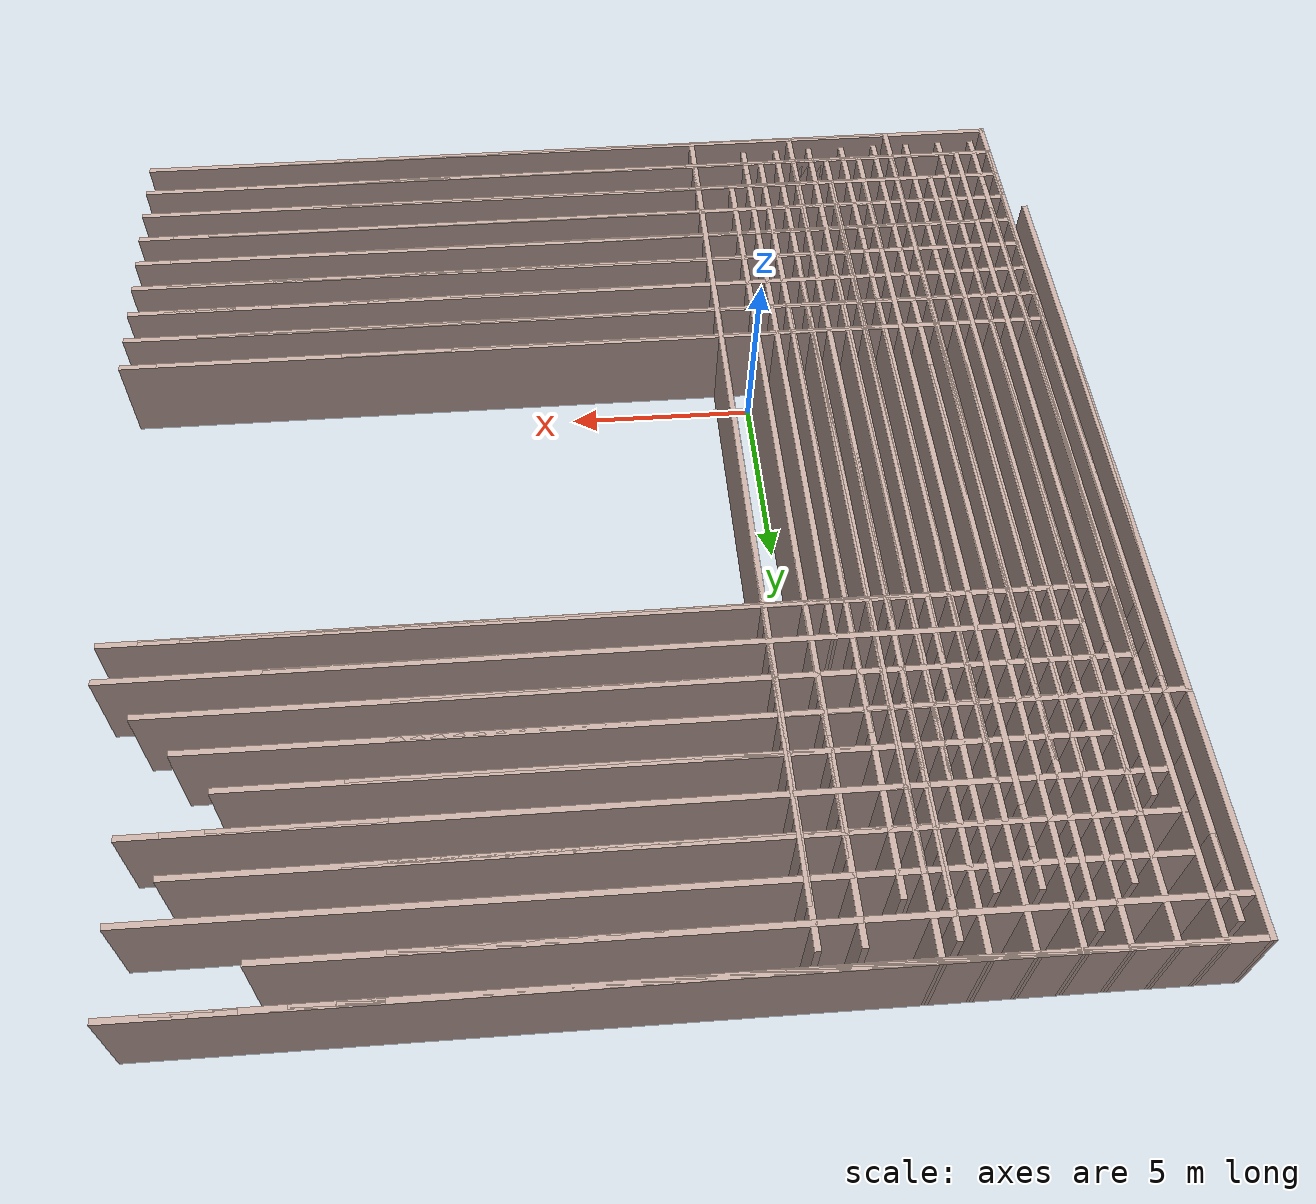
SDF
<?xml version="1.0" ?>
<sdf version="1.7">
    <model name="labyrinth">

			<include><name>0_8h</name><uri>model://wall</uri><pose>0 8 0 0 0 0</pose></include>

			<include><name>0_8v</name><uri>model://wall</uri><pose>0 8 0 0 0 1.5707963267948966</pose></include>

			<include><name>0_9h</name><uri>model://wall</uri><pose>0 9 0 0 0 0</pose></include>

			<include><name>0_7v</name><uri>model://wall</uri><pose>0 7 0 0 0 1.5707963267948966</pose></include>

			<include><name>0_6v</name><uri>model://wall</uri><pose>0 6 0 0 0 1.5707963267948966</pose></include>

			<include><name>0_5v</name><uri>model://wall</uri><pose>0 5 0 0 0 1.5707963267948966</pose></include>

			<include><name>0_4v</name><uri>model://wall</uri><pose>0 4 0 0 0 1.5707963267948966</pose></include>

			<include><name>0_3h</name><uri>model://wall</uri><pose>0 3 0 0 0 0</pose></include>

			<include><name>0_3v</name><uri>model://wall</uri><pose>0 3 0 0 0 1.5707963267948966</pose></include>

			<include><name>0_2v</name><uri>model://wall</uri><pose>0 2 0 0 0 1.5707963267948966</pose></include>

			<include><name>0_1v</name><uri>model://wall</uri><pose>0 1 0 0 0 1.5707963267948966</pose></include>

			<include><name>0_0h</name><uri>model://wall_White</uri><pose>0 0 0 0 0 0</pose></include>

			<include><name>0_0v</name><uri>model://wall</uri><pose>0 0 0 0 0 1.5707963267948966</pose></include>

			<include><name>1_8h</name><uri>model://wall</uri><pose>1 8 0 0 0 0</pose></include>

			<include><name>1_9h</name><uri>model://wall</uri><pose>1 9 0 0 0 0</pose></include>

			<include><name>1_7h</name><uri>model://wall</uri><pose>1 7 0 0 0 0</pose></include>

			<include><name>1_6h</name><uri>model://wall</uri><pose>1 6 0 0 0 0</pose></include>

			<include><name>1_5h</name><uri>model://wall</uri><pose>1 5 0 0 0 0</pose></include>

			<include><name>1_5v</name><uri>model://wall</uri><pose>1 5 0 0 0 1.5707963267948966</pose></include>

			<include><name>1_4v</name><uri>model://wall</uri><pose>1 4 0 0 0 1.5707963267948966</pose></include>

			<include><name>1_3h</name><uri>model://wall</uri><pose>1 3 0 0 0 0</pose></include>

			<include><name>1_2h</name><uri>model://wall</uri><pose>1 2 0 0 0 0</pose></include>

			<include><name>1_1v</name><uri>model://wall</uri><pose>1 1 0 0 0 1.5707963267948966</pose></include>

			<include><name>1_0h</name><uri>model://wall</uri><pose>1 0 0 0 0 0</pose></include>

			<include><name>2_9h</name><uri>model://wall</uri><pose>2 9 0 0 0 0</pose></include>

			<include><name>2_7v</name><uri>model://wall</uri><pose>2 7 0 0 0 1.5707963267948966</pose></include>

			<include><name>2_6h</name><uri>model://wall</uri><pose>2 6 0 0 0 0</pose></include>

			<include><name>2_4h</name><uri>model://wall</uri><pose>2 4 0 0 0 0</pose></include>

			<include><name>2_3v</name><uri>model://wall</uri><pose>2 3 0 0 0 1.5707963267948966</pose></include>

			<include><name>2_2v</name><uri>model://wall</uri><pose>2 2 0 0 0 1.5707963267948966</pose></include>

			<include><name>2_1h</name><uri>model://wall</uri><pose>2 1 0 0 0 0</pose></include>

			<include><name>2_0h</name><uri>model://wall</uri><pose>2 0 0 0 0 0</pose></include>

			<include><name>3_8v</name><uri>model://wall</uri><pose>3 8 0 0 0 1.5707963267948966</pose></include>

			<include><name>3_9h</name><uri>model://wall</uri><pose>3 9 0 0 0 0</pose></include>

			<include><name>3_7v</name><uri>model://wall</uri><pose>3 7 0 0 0 1.5707963267948966</pose></include>

			<include><name>3_6v</name><uri>model://wall</uri><pose>3 6 0 0 0 1.5707963267948966</pose></include>

			<include><name>3_5h</name><uri>model://wall</uri><pose>3 5 0 0 0 0</pose></include>

			<include><name>3_4v</name><uri>model://wall</uri><pose>3 4 0 0 0 1.5707963267948966</pose></include>

			<include><name>3_2v</name><uri>model://wall</uri><pose>3 2 0 0 0 1.5707963267948966</pose></include>

			<include><name>3_1v</name><uri>model://wall</uri><pose>3 1 0 0 0 1.5707963267948966</pose></include>

			<include><name>3_0h</name><uri>model://wall</uri><pose>3 0 0 0 0 0</pose></include>

			<include><name>3_0v</name><uri>model://wall</uri><pose>3 0 0 0 0 1.5707963267948966</pose></include>

			<include><name>4_8h</name><uri>model://wall</uri><pose>4 8 0 0 0 0</pose></include>

			<include><name>4_9h</name><uri>model://wall</uri><pose>4 9 0 0 0 0</pose></include>

			<include><name>4_7v</name><uri>model://wall</uri><pose>4 7 0 0 0 1.5707963267948966</pose></include>

			<include><name>4_6v</name><uri>model://wall</uri><pose>4 6 0 0 0 1.5707963267948966</pose></include>

			<include><name>4_5v</name><uri>model://wall</uri><pose>4 5 0 0 0 1.5707963267948966</pose></include>

			<include><name>4_3v</name><uri>model://wall</uri><pose>4 3 0 0 0 1.5707963267948966</pose></include>

			<include><name>4_2v</name><uri>model://wall</uri><pose>4 2 0 0 0 1.5707963267948966</pose></include>

			<include><name>4_1h</name><uri>model://wall</uri><pose>4 1 0 0 0 0</pose></include>

			<include><name>4_1v</name><uri>model://wall</uri><pose>4 1 0 0 0 1.5707963267948966</pose></include>

			<include><name>4_0h</name><uri>model://wall</uri><pose>4 0 0 0 0 0</pose></include>

			<include><name>5_9h</name><uri>model://wall</uri><pose>5 9 0 0 0 0</pose></include>

			<include><name>5_7v</name><uri>model://wall</uri><pose>5 7 0 0 0 1.5707963267948966</pose></include>

			<include><name>5_6v</name><uri>model://wall</uri><pose>5 6 0 0 0 1.5707963267948966</pose></include>

			<include><name>5_5h</name><uri>model://wall</uri><pose>5 5 0 0 0 0</pose></include>

			<include><name>5_5v</name><uri>model://wall</uri><pose>5 5 0 0 0 1.5707963267948966</pose></include>

			<include><name>5_4h</name><uri>model://wall</uri><pose>5 4 0 0 0 0</pose></include>

			<include><name>5_3v</name><uri>model://wall</uri><pose>5 3 0 0 0 1.5707963267948966</pose></include>

			<include><name>5_2v</name><uri>model://wall</uri><pose>5 2 0 0 0 1.5707963267948966</pose></include>

			<include><name>5_1v</name><uri>model://wall</uri><pose>5 1 0 0 0 1.5707963267948966</pose></include>

			<include><name>5_0h</name><uri>model://wall</uri><pose>5 0 0 0 0 0</pose></include>

			<include><name>6_8v</name><uri>model://wall</uri><pose>6 8 0 0 0 1.5707963267948966</pose></include>

			<include><name>6_9h</name><uri>model://wall</uri><pose>6 9 0 0 0 0</pose></include>

			<include><name>6_7v</name><uri>model://wall</uri><pose>6 7 0 0 0 1.5707963267948966</pose></include>

			<include><name>6_6h</name><uri>model://wall</uri><pose>6 6 0 0 0 0</pose></include>

			<include><name>6_6v</name><uri>model://wall</uri><pose>6 6 0 0 0 1.5707963267948966</pose></include>

			<include><name>6_5h</name><uri>model://wall</uri><pose>6 5 0 0 0 0</pose></include>

			<include><name>6_4v</name><uri>model://wall</uri><pose>6 4 0 0 0 1.5707963267948966</pose></include>

			<include><name>6_3h</name><uri>model://wall</uri><pose>6 3 0 0 0 0</pose></include>

			<include><name>6_2v</name><uri>model://wall</uri><pose>6 2 0 0 0 1.5707963267948966</pose></include>

			<include><name>6_1v</name><uri>model://wall</uri><pose>6 1 0 0 0 1.5707963267948966</pose></include>

			<include><name>6_0h</name><uri>model://wall</uri><pose>6 0 0 0 0 0</pose></include>

			<include><name>6_0v</name><uri>model://wall</uri><pose>6 0 0 0 0 1.5707963267948966</pose></include>

			<include><name>7_9h</name><uri>model://wall</uri><pose>7 9 0 0 0 0</pose></include>

			<include><name>7_7h</name><uri>model://wall</uri><pose>7 7 0 0 0 0</pose></include>

			<include><name>7_7v</name><uri>model://wall</uri><pose>7 7 0 0 0 1.5707963267948966</pose></include>

			<include><name>7_5h</name><uri>model://wall</uri><pose>7 5 0 0 0 0</pose></include>

			<include><name>7_3v</name><uri>model://wall</uri><pose>7 3 0 0 0 1.5707963267948966</pose></include>

			<include><name>7_2h</name><uri>model://wall</uri><pose>7 2 0 0 0 0</pose></include>

			<include><name>7_1v</name><uri>model://wall</uri><pose>7 1 0 0 0 1.5707963267948966</pose></include>

			<include><name>7_0h</name><uri>model://wall</uri><pose>7 0 0 0 0 0</pose></include>

			<include><name>8_8v</name><uri>model://wall</uri><pose>8 8 0 0 0 1.5707963267948966</pose></include>

			<include><name>8_9h</name><uri>model://wall_Red</uri><pose>8 9 0 0 0 0</pose></include>

			<include><name>9_8v</name><uri>model://wall</uri><pose>9 8 0 0 0 1.5707963267948966</pose></include>

			<include><name>9_7v</name><uri>model://wall</uri><pose>9 7 0 0 0 1.5707963267948966</pose></include>

			<include><name>8_6v</name><uri>model://wall</uri><pose>8 6 0 0 0 1.5707963267948966</pose></include>

			<include><name>9_6v</name><uri>model://wall</uri><pose>9 6 0 0 0 1.5707963267948966</pose></include>

			<include><name>8_5v</name><uri>model://wall</uri><pose>8 5 0 0 0 1.5707963267948966</pose></include>

			<include><name>9_5v</name><uri>model://wall</uri><pose>9 5 0 0 0 1.5707963267948966</pose></include>

			<include><name>8_4v</name><uri>model://wall</uri><pose>8 4 0 0 0 1.5707963267948966</pose></include>

			<include><name>9_4v</name><uri>model://wall</uri><pose>9 4 0 0 0 1.5707963267948966</pose></include>

			<include><name>8_3v</name><uri>model://wall</uri><pose>8 3 0 0 0 1.5707963267948966</pose></include>

			<include><name>9_3v</name><uri>model://wall</uri><pose>9 3 0 0 0 1.5707963267948966</pose></include>

			<include><name>8_2v</name><uri>model://wall</uri><pose>8 2 0 0 0 1.5707963267948966</pose></include>

			<include><name>9_2v</name><uri>model://wall</uri><pose>9 2 0 0 0 1.5707963267948966</pose></include>

			<include><name>8_1h</name><uri>model://wall</uri><pose>8 1 0 0 0 0</pose></include>

			<include><name>9_1v</name><uri>model://wall</uri><pose>9 1 0 0 0 1.5707963267948966</pose></include>

			<include><name>8_0h</name><uri>model://wall</uri><pose>8 0 0 0 0 0</pose></include>

			<include><name>9_0v</name><uri>model://wall</uri><pose>9 0 0 0 0 1.5707963267948966</pose></include>

	</model>
</sdf>

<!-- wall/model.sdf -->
<sdf version='1.6'>
  <model name='wall'>
    <pose frame=''>-1.26581 1.80502 0 0 -0 0</pose>
    <link name='Wall_0'>
      <collision name='Wall_0_Collision'>
        <geometry>
          <box>
            <size>16.5 0.15 2.5</size>
          </box>
        </geometry>
        <pose frame=''>0 0 1.25 0 -0 0</pose>
      </collision>
      <visual name='Wall_0_Visual'>
        <pose frame=''>0 0 1.25 0 -0 0</pose>
        <geometry>
          <box>
            <size>16.5 0.15 2.5</size>
          </box>
        </geometry>
        <material>
          <script>
            <uri>file://media/materials/scripts/gazebo.material</uri>
            <name>Gazebo/Grey</name>
          </script>
          <ambient>0.760784 0.662745 0.627451 1</ambient>
        </material>
        <meta>
          <layer>0</layer>
        </meta>
      </visual>
      <pose frame=''>-8.71419 -1.8e-05 0 0 0 -1.5708</pose>
    </link>
    <link name='Wall_2'>
      <collision name='Wall_2_Collision'>
        <geometry>
          <box>
            <size>17.5784 0.15 2.5</size>
          </box>
        </geometry>
        <pose frame=''>0 0 1.25 0 -0 0</pose>
      </collision>
      <visual name='Wall_2_Visual'>
        <pose frame=''>0 0 1.25 0 -0 0</pose>
        <geometry>
          <box>
            <size>17.5784 0.15 2.5</size>
          </box>
        </geometry>
        <material>
          <script>
            <uri>file://media/materials/scripts/gazebo.material</uri>
            <name>Gazebo/Grey</name>
          </script>
          <ambient>0.760784 0.662745 0.627451 1</ambient>
        </material>
        <meta>
          <layer>0</layer>
        </meta>
      </visual>
      <pose frame=''>0 8.17066 0 0 0 -0.000496</pose>
    </link>
    <static>1</static>
  </model>
</sdf>

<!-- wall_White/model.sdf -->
<sdf version="1.7">
	<model name="wall_White">
		<link name="link">
			<visual name="visual">

				<pose>0.5 0.025 0.1 0 0 0</pose>

				<geometry>
					<box>
						<size>1 0.05 0.2</size>
					</box>
				</geometry>

				<material>
					<script>
						<uri>file://media/materials/scripts/gazebo.material</uri>
						<name>Gazebo/White</name>
					</script>
				</material>
			</visual>
			<collision name="collision">

				<pose>0.5 0.025 0.1 0 0 0</pose>

				<geometry>
					<box>
						<size>1 0.05 0.2</size>
					</box>
				</geometry>

				<laser_retro>3</laser_retro>
			</collision>
		</link>
	</model>
</sdf>

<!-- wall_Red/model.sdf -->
<sdf version="1.7">
	<model name="wall_Red">
		<link name="link">
			<visual name="visual">

				<pose>0.5 0.025 0.1 0 0 0</pose>

				<geometry>
					<box>
						<size>1 0.05 0.2</size>
					</box>
				</geometry>

				<material>
					<script>
						<uri>file://media/materials/scripts/gazebo.material</uri>
						<name>Gazebo/Red</name>
					</script>
				</material>
			</visual>
			<collision name="collision">

				<pose>0.5 0.025 0.1 0 0 0</pose>

				<geometry>
					<box>
						<size>1 0.05 0.2</size>
					</box>
				</geometry>

				<laser_retro>2</laser_retro>
			</collision>
		</link>
	</model>
</sdf>
